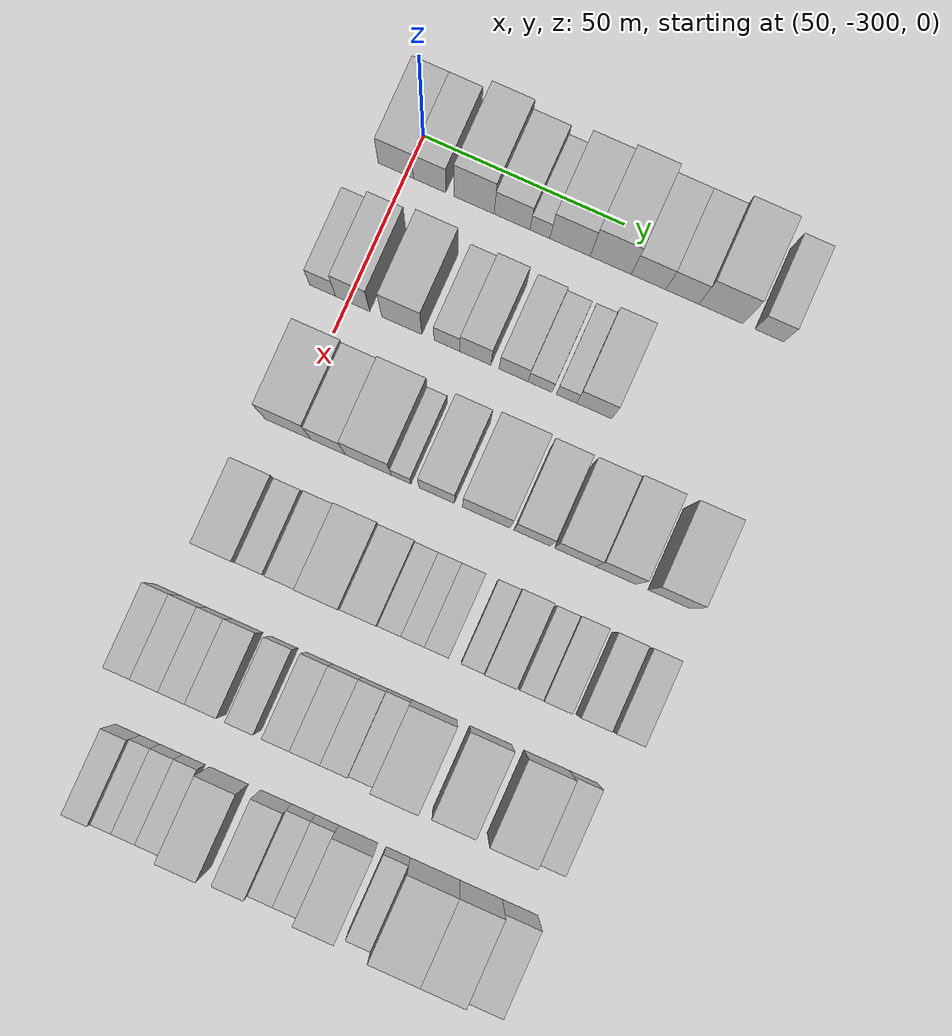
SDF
<sdf version="1.6">
 <world name="default">
  <model name="building_22">
   <static>1</static>
   <pose>50.0000 -302.5627 0 0.000000 0.000000 0.000000</pose>
   <link name="link">
    <pose>0 0 9.00 0 0 0</pose>
    <collision name="collision"><geometry><box><size>20.0000 8.8188 18.0000</size></box></geometry></collision>
    <visual name="visual">
     <cast_shadows>0</cast_shadows>
     <geometry><box><size>20.0000 8.8188 18.0000</size></box></geometry>
     <material>
      <script>
       <uri>model://HANNAS_wall/materials/scripts</uri>
       <uri>model://HANNAS_wall/materials/textures</uri>
       <name>vrc/HANNAS_wall</name>
      </script>
     </material>
    </visual>
   </link>
  </model>
  <model name="building_23">
   <static>1</static>
   <pose>50.0000 -294.1191 0 0.000000 0.000000 0.000000</pose>
   <link name="link">
    <pose>0 0 9.00 0 0 0</pose>
    <collision name="collision"><geometry><box><size>20.0000 8.0684 18.0000</size></box></geometry></collision>
    <visual name="visual">
     <cast_shadows>0</cast_shadows>
     <geometry><box><size>20.0000 8.0684 18.0000</size></box></geometry>
     <material>
      <script>
       <uri>model://HANNAS_wall/materials/scripts</uri>
       <uri>model://HANNAS_wall/materials/textures</uri>
       <name>vrc/HANNAS_wall</name>
      </script>
     </material>
    </visual>
   </link>
  </model>
  <model name="building_24">
   <static>1</static>
   <pose>50.0000 -283.0544 0 0.000000 0.000000 0.000000</pose>
   <link name="link">
    <pose>0 0 12.00 0 0 0</pose>
    <collision name="collision"><geometry><box><size>20.0000 10.0608 24.0000</size></box></geometry></collision>
    <visual name="visual">
     <cast_shadows>0</cast_shadows>
     <geometry><box><size>20.0000 10.0608 24.0000</size></box></geometry>
     <material>
      <script>
       <uri>model://HANNAS_wall/materials/scripts</uri>
       <uri>model://HANNAS_wall/materials/textures</uri>
       <name>vrc/HANNAS_wall</name>
      </script>
     </material>
    </visual>
   </link>
  </model>
  <model name="building_25">
   <static>1</static>
   <pose>50.0000 -273.5514 0 0.000000 0.000000 0.000000</pose>
   <link name="link">
    <pose>0 0 9.00 0 0 0</pose>
    <collision name="collision"><geometry><box><size>20.0000 8.9453 18.0000</size></box></geometry></collision>
    <visual name="visual">
     <cast_shadows>0</cast_shadows>
     <geometry><box><size>20.0000 8.9453 18.0000</size></box></geometry>
     <material>
      <script>
       <uri>model://HANNAS_wall/materials/scripts</uri>
       <uri>model://HANNAS_wall/materials/textures</uri>
       <name>vrc/HANNAS_wall</name>
      </script>
     </material>
    </visual>
   </link>
  </model>
  <model name="building_26">
   <static>1</static>
   <pose>50.0000 -266.6149 0 0.000000 0.000000 0.000000</pose>
   <link name="link">
    <pose>0 0 6.00 0 0 0</pose>
    <collision name="collision"><geometry><box><size>20.0000 4.9277 12.0000</size></box></geometry></collision>
    <visual name="visual">
     <cast_shadows>0</cast_shadows>
     <geometry><box><size>20.0000 4.9277 12.0000</size></box></geometry>
     <material>
      <script>
       <uri>model://HANNAS_wall/materials/scripts</uri>
       <uri>model://HANNAS_wall/materials/textures</uri>
       <name>vrc/HANNAS_wall</name>
      </script>
     </material>
    </visual>
   </link>
  </model>
  <model name="building_27">
   <static>1</static>
   <pose>50.0000 -259.1388 0 0.000000 0.000000 0.000000</pose>
   <link name="link">
    <pose>0 0 10.50 0 0 0</pose>
    <collision name="collision"><geometry><box><size>20.0000 10.0245 21.0000</size></box></geometry></collision>
    <visual name="visual">
     <cast_shadows>0</cast_shadows>
     <geometry><box><size>20.0000 10.0245 21.0000</size></box></geometry>
     <material>
      <script>
       <uri>model://HANNAS_wall/materials/scripts</uri>
       <uri>model://HANNAS_wall/materials/textures</uri>
       <name>vrc/HANNAS_wall</name>
      </script>
     </material>
    </visual>
   </link>
  </model>
  <model name="building_28">
   <static>1</static>
   <pose>50.0000 -249.0320 0 0.000000 0.000000 0.000000</pose>
   <link name="link">
    <pose>0 0 12.00 0 0 0</pose>
    <collision name="collision"><geometry><box><size>20.0000 10.1892 24.0000</size></box></geometry></collision>
    <visual name="visual">
     <cast_shadows>0</cast_shadows>
     <geometry><box><size>20.0000 10.1892 24.0000</size></box></geometry>
     <material>
      <script>
       <uri>model://HANNAS_wall/materials/scripts</uri>
       <uri>model://HANNAS_wall/materials/textures</uri>
       <name>vrc/HANNAS_wall</name>
      </script>
     </material>
    </visual>
   </link>
  </model>
  <model name="building_29">
   <static>1</static>
   <pose>50.0000 -239.6317 0 0.000000 0.000000 0.000000</pose>
   <link name="link">
    <pose>0 0 9.00 0 0 0</pose>
    <collision name="collision"><geometry><box><size>20.0000 8.6114 18.0000</size></box></geometry></collision>
    <visual name="visual">
     <cast_shadows>0</cast_shadows>
     <geometry><box><size>20.0000 8.6114 18.0000</size></box></geometry>
     <material>
      <script>
       <uri>model://HANNAS_wall/materials/scripts</uri>
       <uri>model://HANNAS_wall/materials/textures</uri>
       <name>vrc/HANNAS_wall</name>
      </script>
     </material>
    </visual>
   </link>
  </model>
  <model name="building_30">
   <static>1</static>
   <pose>50.0000 -231.2340 0 0.000000 0.000000 0.000000</pose>
   <link name="link">
    <pose>0 0 9.00 0 0 0</pose>
    <collision name="collision"><geometry><box><size>20.0000 8.1840 18.0000</size></box></geometry></collision>
    <visual name="visual">
     <cast_shadows>0</cast_shadows>
     <geometry><box><size>20.0000 8.1840 18.0000</size></box></geometry>
     <material>
      <script>
       <uri>model://HANNAS_wall/materials/scripts</uri>
       <uri>model://HANNAS_wall/materials/textures</uri>
       <name>vrc/HANNAS_wall</name>
      </script>
     </material>
    </visual>
   </link>
  </model>
  <model name="building_31">
   <static>1</static>
   <pose>50.0000 -221.6913 0 0.000000 0.000000 0.000000</pose>
   <link name="link">
    <pose>0 0 12.00 0 0 0</pose>
    <collision name="collision"><geometry><box><size>20.0000 10.9014 24.0000</size></box></geometry></collision>
    <visual name="visual">
     <cast_shadows>0</cast_shadows>
     <geometry><box><size>20.0000 10.9014 24.0000</size></box></geometry>
     <material>
      <script>
       <uri>model://HANNAS_wall/materials/scripts</uri>
       <uri>model://HANNAS_wall/materials/textures</uri>
       <name>vrc/HANNAS_wall</name>
      </script>
     </material>
    </visual>
   </link>
  </model>
  <model name="building_32">
   <static>1</static>
   <pose>50.0000 -209.6548 0 0.000000 0.000000 0.000000</pose>
   <link name="link">
    <pose>0 0 7.50 0 0 0</pose>
    <collision name="collision"><geometry><box><size>20.0000 7.1716 15.0000</size></box></geometry></collision>
    <visual name="visual">
     <cast_shadows>0</cast_shadows>
     <geometry><box><size>20.0000 7.1716 15.0000</size></box></geometry>
     <material>
      <script>
       <uri>model://HANNAS_wall/materials/scripts</uri>
       <uri>model://HANNAS_wall/materials/textures</uri>
       <name>vrc/HANNAS_wall</name>
      </script>
     </material>
    </visual>
   </link>
  </model>
  <model name="building_132">
   <static>1</static>
   <pose>82.0000 -306.3340 0 0.000000 0.000000 0.000000</pose>
   <link name="link">
    <pose>0 0 7.50 0 0 0</pose>
    <collision name="collision"><geometry><box><size>20.0000 6.4335 15.0000</size></box></geometry></collision>
    <visual name="visual">
     <cast_shadows>0</cast_shadows>
     <geometry><box><size>20.0000 6.4335 15.0000</size></box></geometry>
     <material>
      <script>
       <uri>model://HANNAS_wall/materials/scripts</uri>
       <uri>model://HANNAS_wall/materials/textures</uri>
       <name>vrc/HANNAS_wall</name>
      </script>
     </material>
    </visual>
   </link>
  </model>
  <model name="building_133">
   <static>1</static>
   <pose>82.0000 -298.8642 0 0.000000 0.000000 0.000000</pose>
   <link name="link">
    <pose>0 0 10.50 0 0 0</pose>
    <collision name="collision"><geometry><box><size>20.0000 8.5059 21.0000</size></box></geometry></collision>
    <visual name="visual">
     <cast_shadows>0</cast_shadows>
     <geometry><box><size>20.0000 8.5059 21.0000</size></box></geometry>
     <material>
      <script>
       <uri>model://HANNAS_wall/materials/scripts</uri>
       <uri>model://HANNAS_wall/materials/textures</uri>
       <name>vrc/HANNAS_wall</name>
      </script>
     </material>
    </visual>
   </link>
  </model>
  <model name="building_134">
   <static>1</static>
   <pose>82.0000 -286.6389 0 0.000000 0.000000 0.000000</pose>
   <link name="link">
    <pose>0 0 12.00 0 0 0</pose>
    <collision name="collision"><geometry><box><size>20.0000 9.9447 24.0000</size></box></geometry></collision>
    <visual name="visual">
     <cast_shadows>0</cast_shadows>
     <geometry><box><size>20.0000 9.9447 24.0000</size></box></geometry>
     <material>
      <script>
       <uri>model://HANNAS_wall/materials/scripts</uri>
       <uri>model://HANNAS_wall/materials/textures</uri>
       <name>vrc/HANNAS_wall</name>
      </script>
     </material>
    </visual>
   </link>
  </model>
  <model name="building_135">
   <static>1</static>
   <pose>82.0000 -275.4617 0 0.000000 0.000000 0.000000</pose>
   <link name="link">
    <pose>0 0 7.50 0 0 0</pose>
    <collision name="collision"><geometry><box><size>20.0000 6.4098 15.0000</size></box></geometry></collision>
    <visual name="visual">
     <cast_shadows>0</cast_shadows>
     <geometry><box><size>20.0000 6.4098 15.0000</size></box></geometry>
     <material>
      <script>
       <uri>model://HANNAS_wall/materials/scripts</uri>
       <uri>model://HANNAS_wall/materials/textures</uri>
       <name>vrc/HANNAS_wall</name>
      </script>
     </material>
    </visual>
   </link>
  </model>
  <model name="building_136">
   <static>1</static>
   <pose>82.0000 -268.4153 0 0.000000 0.000000 0.000000</pose>
   <link name="link">
    <pose>0 0 9.00 0 0 0</pose>
    <collision name="collision"><geometry><box><size>20.0000 7.6828 18.0000</size></box></geometry></collision>
    <visual name="visual">
     <cast_shadows>0</cast_shadows>
     <geometry><box><size>20.0000 7.6828 18.0000</size></box></geometry>
     <material>
      <script>
       <uri>model://HANNAS_wall/materials/scripts</uri>
       <uri>model://HANNAS_wall/materials/textures</uri>
       <name>vrc/HANNAS_wall</name>
      </script>
     </material>
    </visual>
   </link>
  </model>
  <model name="building_137">
   <static>1</static>
   <pose>82.0000 -258.9660 0 0.000000 0.000000 0.000000</pose>
   <link name="link">
    <pose>0 0 7.50 0 0 0</pose>
    <collision name="collision"><geometry><box><size>20.0000 7.2158 15.0000</size></box></geometry></collision>
    <visual name="visual">
     <cast_shadows>0</cast_shadows>
     <geometry><box><size>20.0000 7.2158 15.0000</size></box></geometry>
     <material>
      <script>
       <uri>model://HANNAS_wall/materials/scripts</uri>
       <uri>model://HANNAS_wall/materials/textures</uri>
       <name>vrc/HANNAS_wall</name>
      </script>
     </material>
    </visual>
   </link>
  </model>
  <model name="building_138">
   <static>1</static>
   <pose>82.0000 -252.3687 0 0.000000 0.000000 0.000000</pose>
   <link name="link">
    <pose>0 0 6.00 0 0 0</pose>
    <collision name="collision"><geometry><box><size>20.0000 5.9787 12.0000</size></box></geometry></collision>
    <visual name="visual">
     <cast_shadows>0</cast_shadows>
     <geometry><box><size>20.0000 5.9787 12.0000</size></box></geometry>
     <material>
      <script>
       <uri>model://HANNAS_wall/materials/scripts</uri>
       <uri>model://HANNAS_wall/materials/textures</uri>
       <name>vrc/HANNAS_wall</name>
      </script>
     </material>
    </visual>
   </link>
  </model>
  <model name="building_139">
   <static>1</static>
   <pose>82.0000 -245.8576 0 0.000000 0.000000 0.000000</pose>
   <link name="link">
    <pose>0 0 6.00 0 0 0</pose>
    <collision name="collision"><geometry><box><size>20.0000 5.0436 12.0000</size></box></geometry></collision>
    <visual name="visual">
     <cast_shadows>0</cast_shadows>
     <geometry><box><size>20.0000 5.0436 12.0000</size></box></geometry>
     <material>
      <script>
       <uri>model://HANNAS_wall/materials/scripts</uri>
       <uri>model://HANNAS_wall/materials/textures</uri>
       <name>vrc/HANNAS_wall</name>
      </script>
     </material>
    </visual>
   </link>
  </model>
  <model name="building_140">
   <static>1</static>
   <pose>82.0000 -238.9983 0 0.000000 0.000000 0.000000</pose>
   <link name="link">
    <pose>0 0 9.00 0 0 0</pose>
    <collision name="collision"><geometry><box><size>20.0000 8.6749 18.0000</size></box></geometry></collision>
    <visual name="visual">
     <cast_shadows>0</cast_shadows>
     <geometry><box><size>20.0000 8.6749 18.0000</size></box></geometry>
     <material>
      <script>
       <uri>model://HANNAS_wall/materials/scripts</uri>
       <uri>model://HANNAS_wall/materials/textures</uri>
       <name>vrc/HANNAS_wall</name>
      </script>
     </material>
    </visual>
   </link>
  </model>
  <model name="building_244">
   <static>1</static>
   <pose>114.0000 -300.3605 0 0.000000 0.000000 0.000000</pose>
   <link name="link">
    <pose>0 0 12.00 0 0 0</pose>
    <collision name="collision"><geometry><box><size>20.0000 11.2954 24.0000</size></box></geometry></collision>
    <visual name="visual">
     <cast_shadows>0</cast_shadows>
     <geometry><box><size>20.0000 11.2954 24.0000</size></box></geometry>
     <material>
      <script>
       <uri>model://HANNAS_wall/materials/scripts</uri>
       <uri>model://HANNAS_wall/materials/textures</uri>
       <name>vrc/HANNAS_wall</name>
      </script>
     </material>
    </visual>
   </link>
  </model>
  <model name="building_245">
   <static>1</static>
   <pose>114.0000 -290.4537 0 0.000000 0.000000 0.000000</pose>
   <link name="link">
    <pose>0 0 10.50 0 0 0</pose>
    <collision name="collision"><geometry><box><size>20.0000 8.5182 21.0000</size></box></geometry></collision>
    <visual name="visual">
     <cast_shadows>0</cast_shadows>
     <geometry><box><size>20.0000 8.5182 21.0000</size></box></geometry>
     <material>
      <script>
       <uri>model://HANNAS_wall/materials/scripts</uri>
       <uri>model://HANNAS_wall/materials/textures</uri>
       <name>vrc/HANNAS_wall</name>
      </script>
     </material>
    </visual>
   </link>
  </model>
  <model name="building_246">
   <static>1</static>
   <pose>114.0000 -280.4928 0 0.000000 0.000000 0.000000</pose>
   <link name="link">
    <pose>0 0 12.00 0 0 0</pose>
    <collision name="collision"><geometry><box><size>20.0000 11.4037 24.0000</size></box></geometry></collision>
    <visual name="visual">
     <cast_shadows>0</cast_shadows>
     <geometry><box><size>20.0000 11.4037 24.0000</size></box></geometry>
     <material>
      <script>
       <uri>model://HANNAS_wall/materials/scripts</uri>
       <uri>model://HANNAS_wall/materials/textures</uri>
       <name>vrc/HANNAS_wall</name>
      </script>
     </material>
    </visual>
   </link>
  </model>
  <model name="building_247">
   <static>1</static>
   <pose>114.0000 -272.3788 0 0.000000 0.000000 0.000000</pose>
   <link name="link">
    <pose>0 0 6.00 0 0 0</pose>
    <collision name="collision"><geometry><box><size>20.0000 4.8243 12.0000</size></box></geometry></collision>
    <visual name="visual">
     <cast_shadows>0</cast_shadows>
     <geometry><box><size>20.0000 4.8243 12.0000</size></box></geometry>
     <material>
      <script>
       <uri>model://HANNAS_wall/materials/scripts</uri>
       <uri>model://HANNAS_wall/materials/textures</uri>
       <name>vrc/HANNAS_wall</name>
      </script>
     </material>
    </visual>
   </link>
  </model>
  <model name="building_248">
   <static>1</static>
   <pose>114.0000 -263.6312 0 0.000000 0.000000 0.000000</pose>
   <link name="link">
    <pose>0 0 10.50 0 0 0</pose>
    <collision name="collision"><geometry><box><size>20.0000 8.6708 21.0000</size></box></geometry></collision>
    <visual name="visual">
     <cast_shadows>0</cast_shadows>
     <geometry><box><size>20.0000 8.6708 21.0000</size></box></geometry>
     <material>
      <script>
       <uri>model://HANNAS_wall/materials/scripts</uri>
       <uri>model://HANNAS_wall/materials/textures</uri>
       <name>vrc/HANNAS_wall</name>
      </script>
     </material>
    </visual>
   </link>
  </model>
  <model name="building_249">
   <static>1</static>
   <pose>114.0000 -251.4500 0 0.000000 0.000000 0.000000</pose>
   <link name="link">
    <pose>0 0 12.00 0 0 0</pose>
    <collision name="collision"><geometry><box><size>20.0000 11.6916 24.0000</size></box></geometry></collision>
    <visual name="visual">
     <cast_shadows>0</cast_shadows>
     <geometry><box><size>20.0000 11.6916 24.0000</size></box></geometry>
     <material>
      <script>
       <uri>model://HANNAS_wall/materials/scripts</uri>
       <uri>model://HANNAS_wall/materials/textures</uri>
       <name>vrc/HANNAS_wall</name>
      </script>
     </material>
    </visual>
   </link>
  </model>
  <model name="building_250">
   <static>1</static>
   <pose>114.0000 -240.1351 0 0.000000 0.000000 0.000000</pose>
   <link name="link">
    <pose>0 0 10.50 0 0 0</pose>
    <collision name="collision"><geometry><box><size>20.0000 8.9382 21.0000</size></box></geometry></collision>
    <visual name="visual">
     <cast_shadows>0</cast_shadows>
     <geometry><box><size>20.0000 8.9382 21.0000</size></box></geometry>
     <material>
      <script>
       <uri>model://HANNAS_wall/materials/scripts</uri>
       <uri>model://HANNAS_wall/materials/textures</uri>
       <name>vrc/HANNAS_wall</name>
      </script>
     </material>
    </visual>
   </link>
  </model>
  <model name="building_251">
   <static>1</static>
   <pose>114.0000 -229.6135 0 0.000000 0.000000 0.000000</pose>
   <link name="link">
    <pose>0 0 10.50 0 0 0</pose>
    <collision name="collision"><geometry><box><size>20.0000 10.1050 21.0000</size></box></geometry></collision>
    <visual name="visual">
     <cast_shadows>0</cast_shadows>
     <geometry><box><size>20.0000 10.1050 21.0000</size></box></geometry>
     <material>
      <script>
       <uri>model://HANNAS_wall/materials/scripts</uri>
       <uri>model://HANNAS_wall/materials/textures</uri>
       <name>vrc/HANNAS_wall</name>
      </script>
     </material>
    </visual>
   </link>
  </model>
  <model name="building_252">
   <static>1</static>
   <pose>114.0000 -219.6420 0 0.000000 0.000000 0.000000</pose>
   <link name="link">
    <pose>0 0 12.00 0 0 0</pose>
    <collision name="collision"><geometry><box><size>20.0000 9.8380 24.0000</size></box></geometry></collision>
    <visual name="visual">
     <cast_shadows>0</cast_shadows>
     <geometry><box><size>20.0000 9.8380 24.0000</size></box></geometry>
     <material>
      <script>
       <uri>model://HANNAS_wall/materials/scripts</uri>
       <uri>model://HANNAS_wall/materials/textures</uri>
       <name>vrc/HANNAS_wall</name>
      </script>
     </material>
    </visual>
   </link>
  </model>
  <model name="building_253">
   <static>1</static>
   <pose>114.0000 -206.5514 0 0.000000 0.000000 0.000000</pose>
   <link name="link">
    <pose>0 0 12.00 0 0 0</pose>
    <collision name="collision"><geometry><box><size>20.0000 10.3431 24.0000</size></box></geometry></collision>
    <visual name="visual">
     <cast_shadows>0</cast_shadows>
     <geometry><box><size>20.0000 10.3431 24.0000</size></box></geometry>
     <material>
      <script>
       <uri>model://HANNAS_wall/materials/scripts</uri>
       <uri>model://HANNAS_wall/materials/textures</uri>
       <name>vrc/HANNAS_wall</name>
      </script>
     </material>
    </visual>
   </link>
  </model>
  <model name="building_359">
   <static>1</static>
   <pose>146.0000 -301.4895 0 0.000000 0.000000 0.000000</pose>
   <link name="link">
    <pose>0 0 10.50 0 0 0</pose>
    <collision name="collision"><geometry><box><size>20.0000 9.5676 21.0000</size></box></geometry></collision>
    <visual name="visual">
     <cast_shadows>0</cast_shadows>
     <geometry><box><size>20.0000 9.5676 21.0000</size></box></geometry>
     <material>
      <script>
       <uri>model://HANNAS_wall/materials/scripts</uri>
       <uri>model://HANNAS_wall/materials/textures</uri>
       <name>vrc/HANNAS_wall</name>
      </script>
     </material>
    </visual>
   </link>
  </model>
  <model name="building_360">
   <static>1</static>
   <pose>146.0000 -293.5397 0 0.000000 0.000000 0.000000</pose>
   <link name="link">
    <pose>0 0 7.50 0 0 0</pose>
    <collision name="collision"><geometry><box><size>20.0000 6.3321 15.0000</size></box></geometry></collision>
    <visual name="visual">
     <cast_shadows>0</cast_shadows>
     <geometry><box><size>20.0000 6.3321 15.0000</size></box></geometry>
     <material>
      <script>
       <uri>model://HANNAS_wall/materials/scripts</uri>
       <uri>model://HANNAS_wall/materials/textures</uri>
       <name>vrc/HANNAS_wall</name>
      </script>
     </material>
    </visual>
   </link>
  </model>
  <model name="building_361">
   <static>1</static>
   <pose>146.0000 -285.6236 0 0.000000 0.000000 0.000000</pose>
   <link name="link">
    <pose>0 0 9.00 0 0 0</pose>
    <collision name="collision"><geometry><box><size>20.0000 7.5001 18.0000</size></box></geometry></collision>
    <visual name="visual">
     <cast_shadows>0</cast_shadows>
     <geometry><box><size>20.0000 7.5001 18.0000</size></box></geometry>
     <material>
      <script>
       <uri>model://HANNAS_wall/materials/scripts</uri>
       <uri>model://HANNAS_wall/materials/textures</uri>
       <name>vrc/HANNAS_wall</name>
      </script>
     </material>
    </visual>
   </link>
  </model>
  <model name="building_362">
   <static>1</static>
   <pose>146.0000 -276.8213 0 0.000000 0.000000 0.000000</pose>
   <link name="link">
    <pose>0 0 12.00 0 0 0</pose>
    <collision name="collision"><geometry><box><size>20.0000 10.1045 24.0000</size></box></geometry></collision>
    <visual name="visual">
     <cast_shadows>0</cast_shadows>
     <geometry><box><size>20.0000 10.1045 24.0000</size></box></geometry>
     <material>
      <script>
       <uri>model://HANNAS_wall/materials/scripts</uri>
       <uri>model://HANNAS_wall/materials/textures</uri>
       <name>vrc/HANNAS_wall</name>
      </script>
     </material>
    </visual>
   </link>
  </model>
  <model name="building_363">
   <static>1</static>
   <pose>146.0000 -267.5331 0 0.000000 0.000000 0.000000</pose>
   <link name="link">
    <pose>0 0 9.00 0 0 0</pose>
    <collision name="collision"><geometry><box><size>20.0000 8.4719 18.0000</size></box></geometry></collision>
    <visual name="visual">
     <cast_shadows>0</cast_shadows>
     <geometry><box><size>20.0000 8.4719 18.0000</size></box></geometry>
     <material>
      <script>
       <uri>model://HANNAS_wall/materials/scripts</uri>
       <uri>model://HANNAS_wall/materials/textures</uri>
       <name>vrc/HANNAS_wall</name>
      </script>
     </material>
    </visual>
   </link>
  </model>
  <model name="building_364">
   <static>1</static>
   <pose>146.0000 -260.5155 0 0.000000 0.000000 0.000000</pose>
   <link name="link">
    <pose>0 0 6.00 0 0 0</pose>
    <collision name="collision"><geometry><box><size>20.0000 5.5634 12.0000</size></box></geometry></collision>
    <visual name="visual">
     <cast_shadows>0</cast_shadows>
     <geometry><box><size>20.0000 5.5634 12.0000</size></box></geometry>
     <material>
      <script>
       <uri>model://HANNAS_wall/materials/scripts</uri>
       <uri>model://HANNAS_wall/materials/textures</uri>
       <name>vrc/HANNAS_wall</name>
      </script>
     </material>
    </visual>
   </link>
  </model>
  <model name="building_365">
   <static>1</static>
   <pose>146.0000 -254.9244 0 0.000000 0.000000 0.000000</pose>
   <link name="link">
    <pose>0 0 6.00 0 0 0</pose>
    <collision name="collision"><geometry><box><size>20.0000 5.6187 12.0000</size></box></geometry></collision>
    <visual name="visual">
     <cast_shadows>0</cast_shadows>
     <geometry><box><size>20.0000 5.6187 12.0000</size></box></geometry>
     <material>
      <script>
       <uri>model://HANNAS_wall/materials/scripts</uri>
       <uri>model://HANNAS_wall/materials/textures</uri>
       <name>vrc/HANNAS_wall</name>
      </script>
     </material>
    </visual>
   </link>
  </model>
  <model name="building_366">
   <static>1</static>
   <pose>146.0000 -249.2355 0 0.000000 0.000000 0.000000</pose>
   <link name="link">
    <pose>0 0 6.00 0 0 0</pose>
    <collision name="collision"><geometry><box><size>20.0000 5.7590 12.0000</size></box></geometry></collision>
    <visual name="visual">
     <cast_shadows>0</cast_shadows>
     <geometry><box><size>20.0000 5.7590 12.0000</size></box></geometry>
     <material>
      <script>
       <uri>model://HANNAS_wall/materials/scripts</uri>
       <uri>model://HANNAS_wall/materials/textures</uri>
       <name>vrc/HANNAS_wall</name>
      </script>
     </material>
    </visual>
   </link>
  </model>
  <model name="building_367">
   <static>1</static>
   <pose>146.0000 -240.6476 0 0.000000 0.000000 0.000000</pose>
   <link name="link">
    <pose>0 0 6.00 0 0 0</pose>
    <collision name="collision"><geometry><box><size>20.0000 5.4169 12.0000</size></box></geometry></collision>
    <visual name="visual">
     <cast_shadows>0</cast_shadows>
     <geometry><box><size>20.0000 5.4169 12.0000</size></box></geometry>
     <material>
      <script>
       <uri>model://HANNAS_wall/materials/scripts</uri>
       <uri>model://HANNAS_wall/materials/textures</uri>
       <name>vrc/HANNAS_wall</name>
      </script>
     </material>
    </visual>
   </link>
  </model>
  <model name="building_368">
   <static>1</static>
   <pose>146.0000 -234.1759 0 0.000000 0.000000 0.000000</pose>
   <link name="link">
    <pose>0 0 9.00 0 0 0</pose>
    <collision name="collision"><geometry><box><size>20.0000 7.5264 18.0000</size></box></geometry></collision>
    <visual name="visual">
     <cast_shadows>0</cast_shadows>
     <geometry><box><size>20.0000 7.5264 18.0000</size></box></geometry>
     <material>
      <script>
       <uri>model://HANNAS_wall/materials/scripts</uri>
       <uri>model://HANNAS_wall/materials/textures</uri>
       <name>vrc/HANNAS_wall</name>
      </script>
     </material>
    </visual>
   </link>
  </model>
  <model name="building_369">
   <static>1</static>
   <pose>146.0000 -226.6441 0 0.000000 0.000000 0.000000</pose>
   <link name="link">
    <pose>0 0 6.00 0 0 0</pose>
    <collision name="collision"><geometry><box><size>20.0000 5.5373 12.0000</size></box></geometry></collision>
    <visual name="visual">
     <cast_shadows>0</cast_shadows>
     <geometry><box><size>20.0000 5.5373 12.0000</size></box></geometry>
     <material>
      <script>
       <uri>model://HANNAS_wall/materials/scripts</uri>
       <uri>model://HANNAS_wall/materials/textures</uri>
       <name>vrc/HANNAS_wall</name>
      </script>
     </material>
    </visual>
   </link>
  </model>
  <model name="building_370">
   <static>1</static>
   <pose>146.0000 -220.5611 0 0.000000 0.000000 0.000000</pose>
   <link name="link">
    <pose>0 0 7.50 0 0 0</pose>
    <collision name="collision"><geometry><box><size>20.0000 6.6286 15.0000</size></box></geometry></collision>
    <visual name="visual">
     <cast_shadows>0</cast_shadows>
     <geometry><box><size>20.0000 6.6286 15.0000</size></box></geometry>
     <material>
      <script>
       <uri>model://HANNAS_wall/materials/scripts</uri>
       <uri>model://HANNAS_wall/materials/textures</uri>
       <name>vrc/HANNAS_wall</name>
      </script>
     </material>
    </visual>
   </link>
  </model>
  <model name="building_371">
   <static>1</static>
   <pose>146.0000 -211.6110 0 0.000000 0.000000 0.000000</pose>
   <link name="link">
    <pose>0 0 7.50 0 0 0</pose>
    <collision name="collision"><geometry><box><size>20.0000 7.2715 15.0000</size></box></geometry></collision>
    <visual name="visual">
     <cast_shadows>0</cast_shadows>
     <geometry><box><size>20.0000 7.2715 15.0000</size></box></geometry>
     <material>
      <script>
       <uri>model://HANNAS_wall/materials/scripts</uri>
       <uri>model://HANNAS_wall/materials/textures</uri>
       <name>vrc/HANNAS_wall</name>
      </script>
     </material>
    </visual>
   </link>
  </model>
  <model name="building_372">
   <static>1</static>
   <pose>146.0000 -203.6123 0 0.000000 0.000000 0.000000</pose>
   <link name="link">
    <pose>0 0 7.50 0 0 0</pose>
    <collision name="collision"><geometry><box><size>20.0000 6.7260 15.0000</size></box></geometry></collision>
    <visual name="visual">
     <cast_shadows>0</cast_shadows>
     <geometry><box><size>20.0000 6.7260 15.0000</size></box></geometry>
     <material>
      <script>
       <uri>model://HANNAS_wall/materials/scripts</uri>
       <uri>model://HANNAS_wall/materials/textures</uri>
       <name>vrc/HANNAS_wall</name>
      </script>
     </material>
    </visual>
   </link>
  </model>
  <model name="building_486">
   <static>1</static>
   <pose>178.0000 -310.0719 0 0.000000 0.000000 0.000000</pose>
   <link name="link">
    <pose>0 0 7.50 0 0 0</pose>
    <collision name="collision"><geometry><box><size>20.0000 6.2777 15.0000</size></box></geometry></collision>
    <visual name="visual">
     <cast_shadows>0</cast_shadows>
     <geometry><box><size>20.0000 6.2777 15.0000</size></box></geometry>
     <material>
      <script>
       <uri>model://HANNAS_wall/materials/scripts</uri>
       <uri>model://HANNAS_wall/materials/textures</uri>
       <name>vrc/HANNAS_wall</name>
      </script>
     </material>
    </visual>
   </link>
  </model>
  <model name="building_487">
   <static>1</static>
   <pose>178.0000 -303.6040 0 0.000000 0.000000 0.000000</pose>
   <link name="link">
    <pose>0 0 7.50 0 0 0</pose>
    <collision name="collision"><geometry><box><size>20.0000 6.6582 15.0000</size></box></geometry></collision>
    <visual name="visual">
     <cast_shadows>0</cast_shadows>
     <geometry><box><size>20.0000 6.6582 15.0000</size></box></geometry>
     <material>
      <script>
       <uri>model://HANNAS_wall/materials/scripts</uri>
       <uri>model://HANNAS_wall/materials/textures</uri>
       <name>vrc/HANNAS_wall</name>
      </script>
     </material>
    </visual>
   </link>
  </model>
  <model name="building_488">
   <static>1</static>
   <pose>178.0000 -297.1426 0 0.000000 0.000000 0.000000</pose>
   <link name="link">
    <pose>0 0 7.50 0 0 0</pose>
    <collision name="collision"><geometry><box><size>20.0000 6.2645 15.0000</size></box></geometry></collision>
    <visual name="visual">
     <cast_shadows>0</cast_shadows>
     <geometry><box><size>20.0000 6.2645 15.0000</size></box></geometry>
     <material>
      <script>
       <uri>model://HANNAS_wall/materials/scripts</uri>
       <uri>model://HANNAS_wall/materials/textures</uri>
       <name>vrc/HANNAS_wall</name>
      </script>
     </material>
    </visual>
   </link>
  </model>
  <model name="building_489">
   <static>1</static>
   <pose>178.0000 -290.2606 0 0.000000 0.000000 0.000000</pose>
   <link name="link">
    <pose>0 0 7.50 0 0 0</pose>
    <collision name="collision"><geometry><box><size>20.0000 7.4996 15.0000</size></box></geometry></collision>
    <visual name="visual">
     <cast_shadows>0</cast_shadows>
     <geometry><box><size>20.0000 7.4996 15.0000</size></box></geometry>
     <material>
      <script>
       <uri>model://HANNAS_wall/materials/scripts</uri>
       <uri>model://HANNAS_wall/materials/textures</uri>
       <name>vrc/HANNAS_wall</name>
      </script>
     </material>
    </visual>
   </link>
  </model>
  <model name="building_490">
   <static>1</static>
   <pose>178.0000 -281.1872 0 0.000000 0.000000 0.000000</pose>
   <link name="link">
    <pose>0 0 7.50 0 0 0</pose>
    <collision name="collision"><geometry><box><size>20.0000 6.6471 15.0000</size></box></geometry></collision>
    <visual name="visual">
     <cast_shadows>0</cast_shadows>
     <geometry><box><size>20.0000 6.6471 15.0000</size></box></geometry>
     <material>
      <script>
       <uri>model://HANNAS_wall/materials/scripts</uri>
       <uri>model://HANNAS_wall/materials/textures</uri>
       <name>vrc/HANNAS_wall</name>
      </script>
     </material>
    </visual>
   </link>
  </model>
  <model name="building_491">
   <static>1</static>
   <pose>178.0000 -272.6079 0 0.000000 0.000000 0.000000</pose>
   <link name="link">
    <pose>0 0 7.50 0 0 0</pose>
    <collision name="collision"><geometry><box><size>20.0000 6.5116 15.0000</size></box></geometry></collision>
    <visual name="visual">
     <cast_shadows>0</cast_shadows>
     <geometry><box><size>20.0000 6.5116 15.0000</size></box></geometry>
     <material>
      <script>
       <uri>model://HANNAS_wall/materials/scripts</uri>
       <uri>model://HANNAS_wall/materials/textures</uri>
       <name>vrc/HANNAS_wall</name>
      </script>
     </material>
    </visual>
   </link>
  </model>
  <model name="building_492">
   <static>1</static>
   <pose>178.0000 -265.7823 0 0.000000 0.000000 0.000000</pose>
   <link name="link">
    <pose>0 0 7.50 0 0 0</pose>
    <collision name="collision"><geometry><box><size>20.0000 7.1396 15.0000</size></box></geometry></collision>
    <visual name="visual">
     <cast_shadows>0</cast_shadows>
     <geometry><box><size>20.0000 7.1396 15.0000</size></box></geometry>
     <material>
      <script>
       <uri>model://HANNAS_wall/materials/scripts</uri>
       <uri>model://HANNAS_wall/materials/textures</uri>
       <name>vrc/HANNAS_wall</name>
      </script>
     </material>
    </visual>
   </link>
  </model>
  <model name="building_493">
   <static>1</static>
   <pose>178.0000 -258.9582 0 0.000000 0.000000 0.000000</pose>
   <link name="link">
    <pose>0 0 7.50 0 0 0</pose>
    <collision name="collision"><geometry><box><size>20.0000 6.5086 15.0000</size></box></geometry></collision>
    <visual name="visual">
     <cast_shadows>0</cast_shadows>
     <geometry><box><size>20.0000 6.5086 15.0000</size></box></geometry>
     <material>
      <script>
       <uri>model://HANNAS_wall/materials/scripts</uri>
       <uri>model://HANNAS_wall/materials/textures</uri>
       <name>vrc/HANNAS_wall</name>
      </script>
     </material>
    </visual>
   </link>
  </model>
  <model name="building_494">
   <static>1</static>
   <pose>178.0000 -252.8206 0 0.000000 0.000000 0.000000</pose>
   <link name="link">
    <pose>0 0 6.00 0 0 0</pose>
    <collision name="collision"><geometry><box><size>20.0000 5.7665 12.0000</size></box></geometry></collision>
    <visual name="visual">
     <cast_shadows>0</cast_shadows>
     <geometry><box><size>20.0000 5.7665 12.0000</size></box></geometry>
     <material>
      <script>
       <uri>model://HANNAS_wall/materials/scripts</uri>
       <uri>model://HANNAS_wall/materials/textures</uri>
       <name>vrc/HANNAS_wall</name>
      </script>
     </material>
    </visual>
   </link>
  </model>
  <model name="building_495">
   <static>1</static>
   <pose>178.0000 -244.4012 0 0.000000 0.000000 0.000000</pose>
   <link name="link">
    <pose>0 0 12.00 0 0 0</pose>
    <collision name="collision"><geometry><box><size>20.0000 11.0724 24.0000</size></box></geometry></collision>
    <visual name="visual">
     <cast_shadows>0</cast_shadows>
     <geometry><box><size>20.0000 11.0724 24.0000</size></box></geometry>
     <material>
      <script>
       <uri>model://HANNAS_wall/materials/scripts</uri>
       <uri>model://HANNAS_wall/materials/textures</uri>
       <name>vrc/HANNAS_wall</name>
      </script>
     </material>
    </visual>
   </link>
  </model>
  <model name="building_496">
   <static>1</static>
   <pose>178.0000 -230.7517 0 0.000000 0.000000 0.000000</pose>
   <link name="link">
    <pose>0 0 10.50 0 0 0</pose>
    <collision name="collision"><geometry><box><size>20.0000 10.2265 21.0000</size></box></geometry></collision>
    <visual name="visual">
     <cast_shadows>0</cast_shadows>
     <geometry><box><size>20.0000 10.2265 21.0000</size></box></geometry>
     <material>
      <script>
       <uri>model://HANNAS_wall/materials/scripts</uri>
       <uri>model://HANNAS_wall/materials/textures</uri>
       <name>vrc/HANNAS_wall</name>
      </script>
     </material>
    </visual>
   </link>
  </model>
  <model name="building_497">
   <static>1</static>
   <pose>178.0000 -217.1494 0 0.000000 0.000000 0.000000</pose>
   <link name="link">
    <pose>0 0 12.00 0 0 0</pose>
    <collision name="collision"><geometry><box><size>20.0000 10.9780 24.0000</size></box></geometry></collision>
    <visual name="visual">
     <cast_shadows>0</cast_shadows>
     <geometry><box><size>20.0000 10.9780 24.0000</size></box></geometry>
     <material>
      <script>
       <uri>model://HANNAS_wall/materials/scripts</uri>
       <uri>model://HANNAS_wall/materials/textures</uri>
       <name>vrc/HANNAS_wall</name>
      </script>
     </material>
    </visual>
   </link>
  </model>
  <model name="building_498">
   <static>1</static>
   <pose>178.0000 -208.1849 0 0.000000 0.000000 0.000000</pose>
   <link name="link">
    <pose>0 0 7.50 0 0 0</pose>
    <collision name="collision"><geometry><box><size>20.0000 6.9509 15.0000</size></box></geometry></collision>
    <visual name="visual">
     <cast_shadows>0</cast_shadows>
     <geometry><box><size>20.0000 6.9509 15.0000</size></box></geometry>
     <material>
      <script>
       <uri>model://HANNAS_wall/materials/scripts</uri>
       <uri>model://HANNAS_wall/materials/textures</uri>
       <name>vrc/HANNAS_wall</name>
      </script>
     </material>
    </visual>
   </link>
  </model>
  <model name="building_609">
   <static>1</static>
   <pose>210.0000 -305.1240 0 0.000000 0.000000 0.000000</pose>
   <link name="link">
    <pose>0 0 7.50 0 0 0</pose>
    <collision name="collision"><geometry><box><size>20.0000 6.1142 15.0000</size></box></geometry></collision>
    <visual name="visual">
     <cast_shadows>0</cast_shadows>
     <geometry><box><size>20.0000 6.1142 15.0000</size></box></geometry>
     <material>
      <script>
       <uri>model://HANNAS_wall/materials/scripts</uri>
       <uri>model://HANNAS_wall/materials/textures</uri>
       <name>vrc/HANNAS_wall</name>
      </script>
     </material>
    </visual>
   </link>
  </model>
  <model name="building_610">
   <static>1</static>
   <pose>210.0000 -299.6404 0 0.000000 0.000000 0.000000</pose>
   <link name="link">
    <pose>0 0 6.00 0 0 0</pose>
    <collision name="collision"><geometry><box><size>20.0000 4.8531 12.0000</size></box></geometry></collision>
    <visual name="visual">
     <cast_shadows>0</cast_shadows>
     <geometry><box><size>20.0000 4.8531 12.0000</size></box></geometry>
     <material>
      <script>
       <uri>model://HANNAS_wall/materials/scripts</uri>
       <uri>model://HANNAS_wall/materials/textures</uri>
       <name>vrc/HANNAS_wall</name>
      </script>
     </material>
    </visual>
   </link>
  </model>
  <model name="building_611">
   <static>1</static>
   <pose>210.0000 -294.4038 0 0.000000 0.000000 0.000000</pose>
   <link name="link">
    <pose>0 0 6.00 0 0 0</pose>
    <collision name="collision"><geometry><box><size>20.0000 5.6200 12.0000</size></box></geometry></collision>
    <visual name="visual">
     <cast_shadows>0</cast_shadows>
     <geometry><box><size>20.0000 5.6200 12.0000</size></box></geometry>
     <material>
      <script>
       <uri>model://HANNAS_wall/materials/scripts</uri>
       <uri>model://HANNAS_wall/materials/textures</uri>
       <name>vrc/HANNAS_wall</name>
      </script>
     </material>
    </visual>
   </link>
  </model>
  <model name="building_612">
   <static>1</static>
   <pose>210.0000 -288.8294 0 0.000000 0.000000 0.000000</pose>
   <link name="link">
    <pose>0 0 6.00 0 0 0</pose>
    <collision name="collision"><geometry><box><size>20.0000 5.5288 12.0000</size></box></geometry></collision>
    <visual name="visual">
     <cast_shadows>0</cast_shadows>
     <geometry><box><size>20.0000 5.5288 12.0000</size></box></geometry>
     <material>
      <script>
       <uri>model://HANNAS_wall/materials/scripts</uri>
       <uri>model://HANNAS_wall/materials/textures</uri>
       <name>vrc/HANNAS_wall</name>
      </script>
     </material>
    </visual>
   </link>
  </model>
  <model name="building_613">
   <static>1</static>
   <pose>210.0000 -280.2890 0 0.000000 0.000000 0.000000</pose>
   <link name="link">
    <pose>0 0 10.50 0 0 0</pose>
    <collision name="collision"><geometry><box><size>20.0000 9.5521 21.0000</size></box></geometry></collision>
    <visual name="visual">
     <cast_shadows>0</cast_shadows>
     <geometry><box><size>20.0000 9.5521 21.0000</size></box></geometry>
     <material>
      <script>
       <uri>model://HANNAS_wall/materials/scripts</uri>
       <uri>model://HANNAS_wall/materials/textures</uri>
       <name>vrc/HANNAS_wall</name>
      </script>
     </material>
    </visual>
   </link>
  </model>
  <model name="building_614">
   <static>1</static>
   <pose>210.0000 -268.7313 0 0.000000 0.000000 0.000000</pose>
   <link name="link">
    <pose>0 0 9.00 0 0 0</pose>
    <collision name="collision"><geometry><box><size>20.0000 7.5632 18.0000</size></box></geometry></collision>
    <visual name="visual">
     <cast_shadows>0</cast_shadows>
     <geometry><box><size>20.0000 7.5632 18.0000</size></box></geometry>
     <material>
      <script>
       <uri>model://HANNAS_wall/materials/scripts</uri>
       <uri>model://HANNAS_wall/materials/textures</uri>
       <name>vrc/HANNAS_wall</name>
      </script>
     </material>
    </visual>
   </link>
  </model>
  <model name="building_615">
   <static>1</static>
   <pose>210.0000 -262.0275 0 0.000000 0.000000 0.000000</pose>
   <link name="link">
    <pose>0 0 6.00 0 0 0</pose>
    <collision name="collision"><geometry><box><size>20.0000 5.8443 12.0000</size></box></geometry></collision>
    <visual name="visual">
     <cast_shadows>0</cast_shadows>
     <geometry><box><size>20.0000 5.8443 12.0000</size></box></geometry>
     <material>
      <script>
       <uri>model://HANNAS_wall/materials/scripts</uri>
       <uri>model://HANNAS_wall/materials/textures</uri>
       <name>vrc/HANNAS_wall</name>
      </script>
     </material>
    </visual>
   </link>
  </model>
  <model name="building_616">
   <static>1</static>
   <pose>210.0000 -256.2677 0 0.000000 0.000000 0.000000</pose>
   <link name="link">
    <pose>0 0 6.00 0 0 0</pose>
    <collision name="collision"><geometry><box><size>20.0000 5.6754 12.0000</size></box></geometry></collision>
    <visual name="visual">
     <cast_shadows>0</cast_shadows>
     <geometry><box><size>20.0000 5.6754 12.0000</size></box></geometry>
     <material>
      <script>
       <uri>model://HANNAS_wall/materials/scripts</uri>
       <uri>model://HANNAS_wall/materials/textures</uri>
       <name>vrc/HANNAS_wall</name>
      </script>
     </material>
    </visual>
   </link>
  </model>
  <model name="building_617">
   <static>1</static>
   <pose>210.0000 -248.6747 0 0.000000 0.000000 0.000000</pose>
   <link name="link">
    <pose>0 0 10.50 0 0 0</pose>
    <collision name="collision"><geometry><box><size>20.0000 9.5106 21.0000</size></box></geometry></collision>
    <visual name="visual">
     <cast_shadows>0</cast_shadows>
     <geometry><box><size>20.0000 9.5106 21.0000</size></box></geometry>
     <material>
      <script>
       <uri>model://HANNAS_wall/materials/scripts</uri>
       <uri>model://HANNAS_wall/materials/textures</uri>
       <name>vrc/HANNAS_wall</name>
      </script>
     </material>
    </visual>
   </link>
  </model>
  <model name="building_618">
   <static>1</static>
   <pose>210.0000 -238.9806 0 0.000000 0.000000 0.000000</pose>
   <link name="link">
    <pose>0 0 6.00 0 0 0</pose>
    <collision name="collision"><geometry><box><size>20.0000 5.8776 12.0000</size></box></geometry></collision>
    <visual name="visual">
     <cast_shadows>0</cast_shadows>
     <geometry><box><size>20.0000 5.8776 12.0000</size></box></geometry>
     <material>
      <script>
       <uri>model://HANNAS_wall/materials/scripts</uri>
       <uri>model://HANNAS_wall/materials/textures</uri>
       <name>vrc/HANNAS_wall</name>
      </script>
     </material>
    </visual>
   </link>
  </model>
  <model name="building_619">
   <static>1</static>
   <pose>210.0000 -230.0536 0 0.000000 0.000000 0.000000</pose>
   <link name="link">
    <pose>0 0 12.00 0 0 0</pose>
    <collision name="collision"><geometry><box><size>20.0000 11.9764 24.0000</size></box></geometry></collision>
    <visual name="visual">
     <cast_shadows>0</cast_shadows>
     <geometry><box><size>20.0000 11.9764 24.0000</size></box></geometry>
     <material>
      <script>
       <uri>model://HANNAS_wall/materials/scripts</uri>
       <uri>model://HANNAS_wall/materials/textures</uri>
       <name>vrc/HANNAS_wall</name>
      </script>
     </material>
    </visual>
   </link>
  </model>
  <model name="building_620">
   <static>1</static>
   <pose>210.0000 -218.8502 0 0.000000 0.000000 0.000000</pose>
   <link name="link">
    <pose>0 0 12.00 0 0 0</pose>
    <collision name="collision"><geometry><box><size>20.0000 10.4305 24.0000</size></box></geometry></collision>
    <visual name="visual">
     <cast_shadows>0</cast_shadows>
     <geometry><box><size>20.0000 10.4305 24.0000</size></box></geometry>
     <material>
      <script>
       <uri>model://HANNAS_wall/materials/scripts</uri>
       <uri>model://HANNAS_wall/materials/textures</uri>
       <name>vrc/HANNAS_wall</name>
      </script>
     </material>
    </visual>
   </link>
  </model>
  <model name="building_621">
   <static>1</static>
   <pose>210.0000 -209.3296 0 0.000000 0.000000 0.000000</pose>
   <link name="link">
    <pose>0 0 9.00 0 0 0</pose>
    <collision name="collision"><geometry><box><size>20.0000 8.6106 18.0000</size></box></geometry></collision>
    <visual name="visual">
     <cast_shadows>0</cast_shadows>
     <geometry><box><size>20.0000 8.6106 18.0000</size></box></geometry>
     <material>
      <script>
       <uri>model://HANNAS_wall/materials/scripts</uri>
       <uri>model://HANNAS_wall/materials/textures</uri>
       <name>vrc/HANNAS_wall</name>
      </script>
     </material>
    </visual>
   </link>
  </model>
 </world>
</sdf>
